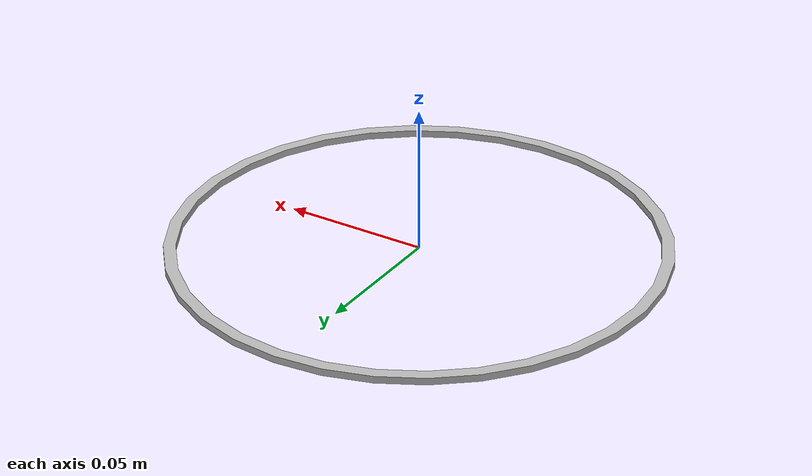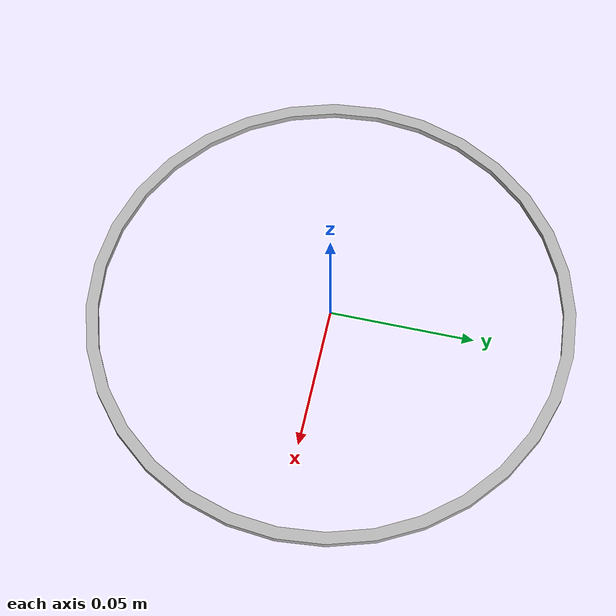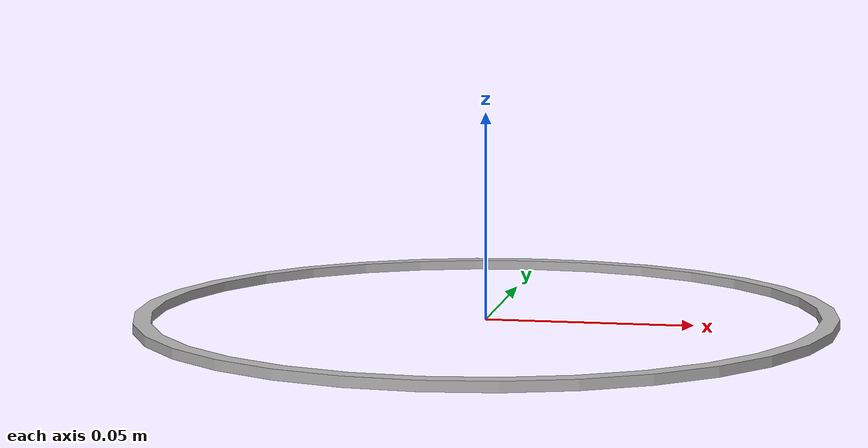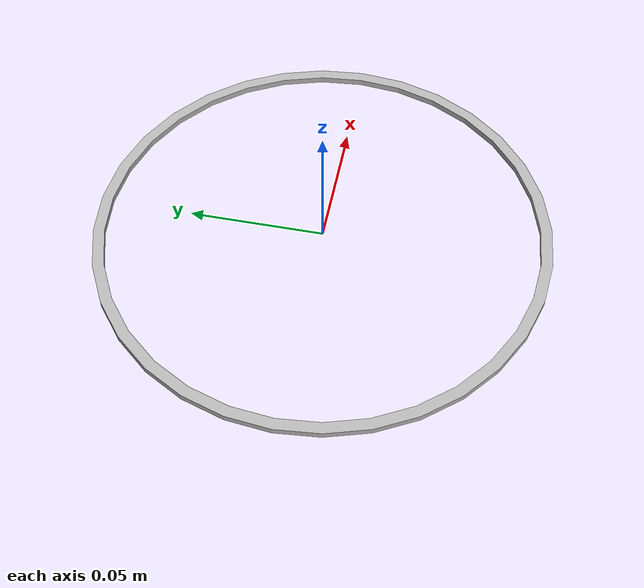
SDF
<?xml version="1.0"?>
<sdf version="1.9">
  <model name="imav2026_copper_ring">
    <static>true</static>

    <link name="copper_ring_link">
      <visual name="copper_ring_visual">
        <geometry>
          <mesh>
            <uri>model://imav2026_copper_ring/meshes/ring_v2.dae</uri>
          </mesh>
        </geometry>
      </visual>

      <collision name="copper_ring_collision">
        <geometry>
          <mesh>
            <uri>model://imav2026_copper_ring/meshes/ring_v2.dae</uri>
          </mesh>
        </geometry>
      </collision>
    </link>
  </model>
</sdf>
